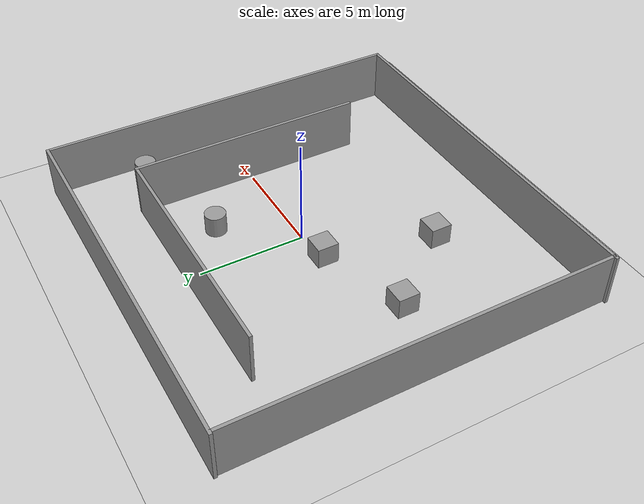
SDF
<sdf version="1.7">
 <world name="default">
  <light name="sun" type="directional">
   <pose>0 0 10 0 -0 0</pose>
   <diffuse>0.8 0.8 0.8 1</diffuse>
   <specular>0.2 0.2 0.2 1</specular>
   <attenuation>
    <range>1000</range>
    <constant>0.9</constant>
    <linear>0.01</linear>
    <quadratic>0.001</quadratic>
   </attenuation>
   <direction>-0.5 0.1 -0.9</direction>
   <spot><inner_angle>0</inner_angle><outer_angle>0</outer_angle><falloff>0</falloff></spot>
  </light>
  <model name="ground_plane">
   <static>1</static>
   <link name="link">
    <collision name="collision">
     <geometry><plane><normal>0 0 1</normal><size>100 100</size></plane></geometry>
     <surface><friction><ode><mu>100</mu><mu2>50</mu2></ode></friction></surface>
    </collision>
    <visual name="visual">
     <cast_shadows>0</cast_shadows>
     <geometry><plane><normal>0 0 1</normal><size>100 100</size></plane></geometry>
     <material>
      <script><uri>file://media/materials/scripts/gazebo.material</uri><name>Gazebo/Grey</name></script>
     </material>
    </visual>
   </link>
  </model>
  <gravity>0 0 -9.8</gravity>
  <magnetic_field>6e-06 2.3e-05 -4.2e-05</magnetic_field>
  <atmosphere type="adiabatic"/>
  <physics type="ode">
   <max_step_size>0.001</max_step_size>
   <real_time_factor>1</real_time_factor>
   <real_time_update_rate>1000</real_time_update_rate>
  </physics>
  <scene><ambient>0.4 0.4 0.4 1</ambient><background>0.7 0.7 0.7 1</background><shadows>1</shadows></scene>
  <audio><device>default</device></audio>
  <spherical_coordinates>
   <surface_model>EARTH_WGS84</surface_model>
   <latitude_deg>0</latitude_deg>
   <longitude_deg>0</longitude_deg>
   <elevation>0</elevation>
   <heading_deg>0</heading_deg>
  </spherical_coordinates>
  <model name="maze_walls">
   <pose>-0.586567 -0.24274 0 0 -0 0</pose>
   <link name="Wall_10">
    <collision name="Wall_10_Collision">
     <geometry><box><size>18.302 0.15 2.5</size></box></geometry>
     <pose>0 0 1.25 0 -0 0</pose>
    </collision>
    <visual name="Wall_10_Visual">
     <pose>0 0 1.25 0 -0 0</pose>
     <geometry><box><size>18.302 0.15 2.5</size></box></geometry>
     <material>
      <script><uri>file://media/materials/scripts/gazebo.material</uri><name>Gazebo/Grey</name></script>
      <ambient>1 1 1 1</ambient>
     </material>
     <meta><layer>0</layer></meta>
    </visual>
    <pose>-0.040686 -8.94454 0 0 -0 0</pose>
   </link>
   <link name="Wall_11">
    <collision name="Wall_11_Collision">
     <geometry><box><size>17.9683 0.15 2.5</size></box></geometry>
     <pose>0 0 1.25 0 -0 0</pose>
    </collision>
    <visual name="Wall_11_Visual">
     <pose>0 0 1.25 0 -0 0</pose>
     <geometry><box><size>17.9683 0.15 2.5</size></box></geometry>
     <material>
      <script><uri>file://media/materials/scripts/gazebo.material</uri><name>Gazebo/Grey</name></script>
      <ambient>1 1 1 1</ambient>
     </material>
     <meta><layer>0</layer></meta>
    </visual>
    <pose>9.11666 -0.035379 0 0 -0 1.5708</pose>
   </link>
   <link name="Wall_12">
    <collision name="Wall_12_Collision">
     <geometry><box><size>18.3302 0.15 2.5</size></box></geometry>
     <pose>0 0 1.25 0 -0 0</pose>
    </collision>
    <visual name="Wall_12_Visual">
     <pose>0 0 1.25 0 -0 0</pose>
     <geometry><box><size>18.3302 0.15 2.5</size></box></geometry>
     <material>
      <script><uri>file://media/materials/scripts/gazebo.material</uri><name>Gazebo/Grey</name></script>
      <ambient>1 1 1 1</ambient>
     </material>
     <meta><layer>0</layer></meta>
    </visual>
    <pose>0.026583 8.94454 0 0 -0 3.14159</pose>
   </link>
   <link name="Wall_13">
    <collision name="Wall_13_Collision">
     <geometry><box><size>18 0.15 2.5</size></box></geometry>
     <pose>0 0 1.25 0 -0 0</pose>
    </collision>
    <visual name="Wall_13_Visual">
     <pose>0 0 1.25 0 -0 0</pose>
     <geometry><box><size>18 0.15 2.5</size></box></geometry>
     <material>
      <script><uri>file://media/materials/scripts/gazebo.material</uri><name>Gazebo/Grey</name></script>
      <ambient>1 1 1 1</ambient>
     </material>
     <meta><layer>0</layer></meta>
    </visual>
    <pose>-8.99274 0.019545 0 0 -0 -1.5708</pose>
   </link>
   <link name="Wall_15">
    <collision name="Wall_15_Collision">
     <geometry><box><size>11.75 0.15 2.5</size></box></geometry>
     <pose>0 0 1.25 0 -0 0</pose>
    </collision>
    <visual name="Wall_15_Visual">
     <pose>0 0 1.25 0 -0 0</pose>
     <geometry><box><size>11.75 0.15 2.5</size></box></geometry>
     <material>
      <script><uri>file://media/materials/scripts/gazebo.material</uri><name>Gazebo/Grey</name></script>
      <ambient>1 1 1 1</ambient>
     </material>
     <meta><layer>0</layer></meta>
    </visual>
    <pose>0.034939 5.85389 0 0 -0 0</pose>
   </link>
   <link name="Wall_16">
    <collision name="Wall_16_Collision">
     <geometry><box><size>11.25 0.15 2.5</size></box></geometry>
     <pose>0 0 1.25 0 -0 0</pose>
    </collision>
    <visual name="Wall_16_Visual">
     <pose>0 0 1.25 0 -0 0</pose>
     <geometry><box><size>11.25 0.15 2.5</size></box></geometry>
     <material>
      <script><uri>file://media/materials/scripts/gazebo.material</uri><name>Gazebo/Grey</name></script>
      <ambient>1 1 1 1</ambient>
     </material>
     <meta><layer>0</layer></meta>
    </visual>
    <pose>5.83494 0.303892 0 0 -0 -1.5708</pose>
   </link>
   <static>1</static>
  </model>
  <model name="unit_box">
   <pose>-5.86564 -1.55957 0.499995 0 1e-05 0</pose>
   <link name="link">
    <inertial>
     <mass>1</mass>
     <inertia>
      <ixx>0.166667</ixx>
      <ixy>0</ixy>
      <ixz>0</ixz>
      <iyy>0.166667</iyy>
      <iyz>0</iyz>
      <izz>0.166667</izz>
     </inertia>
    </inertial>
    <collision name="collision"><geometry><box><size>1 1 1</size></box></geometry></collision>
    <visual name="visual">
     <geometry><box><size>1 1 1</size></box></geometry>
     <material>
      <script><name>Gazebo/Grey</name><uri>file://media/materials/scripts/gazebo.material</uri></script>
     </material>
    </visual>
   </link>
  </model>
  <model name="unit_box_0">
   <pose>-1.61866 -0.169726 0.499995 -1e-05 -0 -0</pose>
   <link name="link">
    <inertial>
     <mass>1</mass>
     <inertia>
      <ixx>0.166667</ixx>
      <ixy>0</ixy>
      <ixz>0</ixz>
      <iyy>0.166667</iyy>
      <iyz>0</iyz>
      <izz>0.166667</izz>
     </inertia>
    </inertial>
    <collision name="collision"><geometry><box><size>1 1 1</size></box></geometry></collision>
    <visual name="visual">
     <geometry><box><size>1 1 1</size></box></geometry>
     <material>
      <script><name>Gazebo/Grey</name><uri>file://media/materials/scripts/gazebo.material</uri></script>
     </material>
    </visual>
   </link>
  </model>
  <model name="unit_box_1">
   <pose>-2.94505 -5.18507 0.499995 0 1e-05 0</pose>
   <link name="link">
    <inertial>
     <mass>1</mass>
     <inertia>
      <ixx>0.166667</ixx>
      <ixy>0</ixy>
      <ixz>0</ixz>
      <iyy>0.166667</iyy>
      <iyz>0</iyz>
      <izz>0.166667</izz>
     </inertia>
    </inertial>
    <collision name="collision"><geometry><box><size>1 1 1</size></box></geometry></collision>
    <visual name="visual">
     <geometry><box><size>1 1 1</size></box></geometry>
     <material>
      <script><name>Gazebo/Grey</name><uri>file://media/materials/scripts/gazebo.material</uri></script>
     </material>
    </visual>
   </link>
  </model>
  <model name="unit_cylinder">
   <pose>2.37069 3.15961 0.499993 -3e-06 -4e-06 -0</pose>
   <link name="link">
    <inertial>
     <mass>1</mass>
     <inertia><ixx>0.145833</ixx><ixy>0</ixy><ixz>0</ixz><iyy>0.145833</iyy><iyz>0</iyz><izz>0.125</izz></inertia>
    </inertial>
    <collision name="collision">
     <geometry><cylinder><radius>0.5</radius><length>1</length></cylinder></geometry>
    </collision>
    <visual name="visual">
     <geometry><cylinder><radius>0.5</radius><length>1</length></cylinder></geometry>
     <material>
      <script><name>Gazebo/Grey</name><uri>file://media/materials/scripts/gazebo.material</uri></script>
     </material>
    </visual>
   </link>
  </model>
  <model name="unit_cylinder_0">
   <pose>7.53644 4.49733 0.499997 3e-06 4e-06 -0</pose>
   <link name="link">
    <inertial>
     <mass>1</mass>
     <inertia><ixx>0.145833</ixx><ixy>0</ixy><ixz>0</ixz><iyy>0.145833</iyy><iyz>0</iyz><izz>0.125</izz></inertia>
    </inertial>
    <collision name="collision">
     <geometry><cylinder><radius>0.5</radius><length>1</length></cylinder></geometry>
    </collision>
    <visual name="visual">
     <geometry><cylinder><radius>0.5</radius><length>1</length></cylinder></geometry>
     <material>
      <script><name>Gazebo/Grey</name><uri>file://media/materials/scripts/gazebo.material</uri></script>
     </material>
    </visual>
   </link>
  </model>
 </world>
</sdf>
